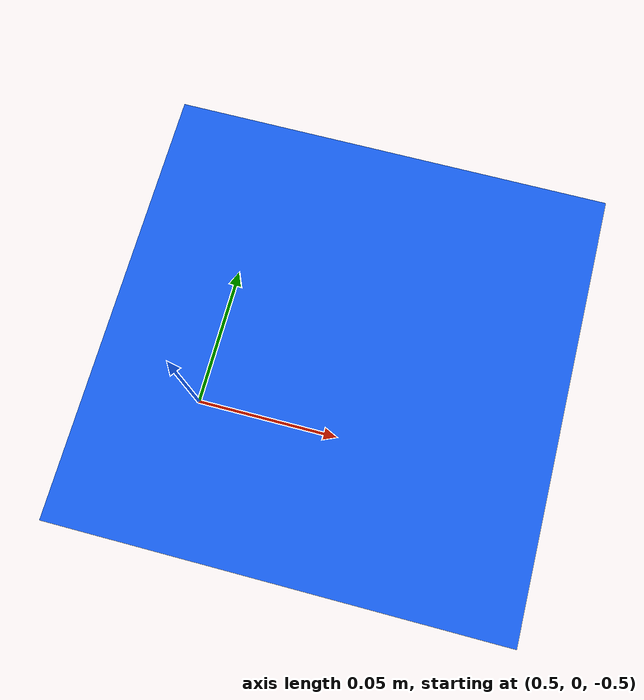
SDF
<?xml version="1.0" ?>
<sdf version="1.9">
  <model name="grab_test_box">
    <!-- Put object in front of ROV gripper -->
    <pose>0.55 0 -0.45 0 0 0</pose>

    <static>false</static>

    <link name="box_link">
      <inertial>
        <!-- Neutral mass in water ≈ 0.216 kg -->
        <mass>1.1</mass>
        <inertia>
          <ixx>0.000132</ixx>
          <iyy>0.000132</iyy>
          <izz>0.000132</izz>
          <ixy>0</ixy>
          <ixz>0</ixz>
          <iyz>0</iyz>
        </inertia>
      </inertial>

      <collision name="box_collision">
        <geometry>
          <box>
            <size>0.1 0.1 0.1</size>
          </box>
        </geometry>

        <surface>
          <friction>
            <ode>
              <mu>2.0</mu>
              <mu2>2.0</mu2>
            </ode>
          </friction>

          <contact>
            <ode>
              <kp>100000</kp>
              <kd>10</kd>
            </ode>
          </contact>
        </surface>
      </collision>

      <visual name="box_visual">
        <geometry>
          <box>
            <size>0.1 0.1 0.1</size>
          </box>
        </geometry>
        <material>
          <ambient>0.1 0.4 1.0 1</ambient>
          <diffuse>0.1 0.4 1.0 1</diffuse>
        </material>
      </visual>
    </link>

    <!-- Hydrodynamic water damping for test object -->
    <plugin
      filename="gz-sim-hydrodynamics-system"
      name="gz::sim::systems::Hydrodynamics">

      <link_name>box_link</link_name>
      <water_density>1000</water_density>

      <!-- Linear damping -->
      <xU>-1.0</xU>
      <yV>-1.0</yV>
      <zW>-1.0</zW>
      <kP>-0.05</kP>
      <mQ>-0.05</mQ>
      <nR>-0.05</nR>

      <!-- Quadratic damping -->
      <xUabsU>-2.0</xUabsU>
      <yVabsV>-2.0</yVabsV>
      <zWabsW>-2.0</zWabsW>
      <kPabsP>-0.01</kPabsP>
      <mQabsQ>-0.01</mQabsQ>
      <nRabsR>-0.01</nRabsR>
    </plugin>
  </model>
</sdf>
